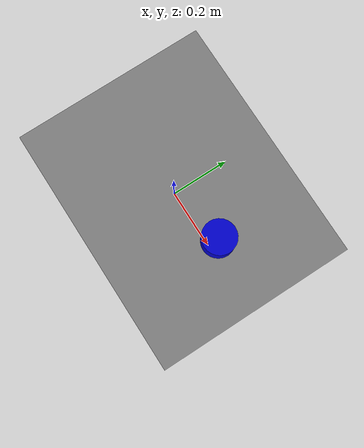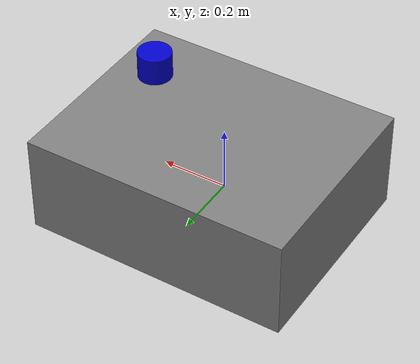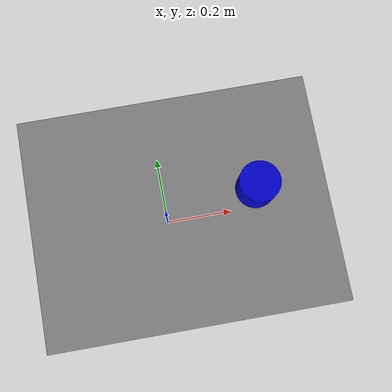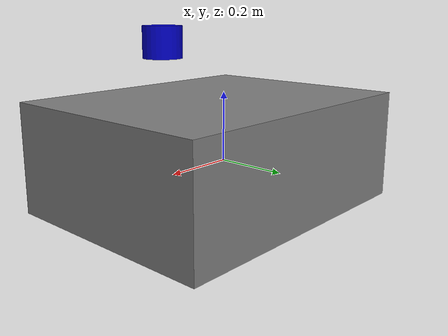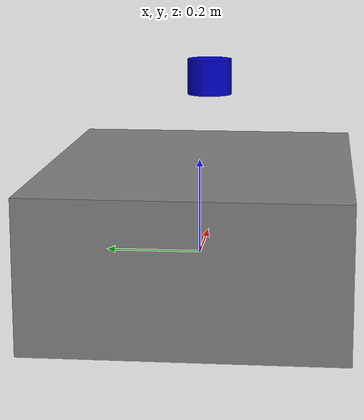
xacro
<?xml version="1.0"?>
<robot name="hunter_se" xmlns:xacro="http://www.ros.org/wiki/xacro">

  <!-- 使用 xacro 内置的 pi 常量，不重复定义 -->

  <!-- ========== 车辆本体尺寸（手册 §1.2 性能参数） ========== -->
  <xacro:property name="length" value="0.82"/>          <!-- 车长 m（820mm） -->
  <xacro:property name="width" value="0.64"/>           <!-- 车宽 m（640mm） -->
  <xacro:property name="height" value="0.31"/>          <!-- 车高 m（310mm） -->
  <xacro:property name="wheelbase" value="0.46"/>       <!-- 轴距 m（460mm，前/后轴中心距） -->
  <xacro:property name="track" value="0.55"/>           <!-- 轮距 m（550mm，左右轮距） -->
  <xacro:property name="max_steer_angle" value="0.384"/> <!-- 最大内轮转向角 22°=0.384rad（CAN 限幅 ±0.4rad） -->
  <xacro:property name="front_overhang" value="0.45"/>  <!-- 车体前缘距 base_link m -->
  <xacro:property name="rear_overhang" value="0.37"/>   <!-- 车体后缘距 base_link m -->
  <xacro:property name="half_width" value="0.32"/>      <!-- 半宽 m -->
  <xacro:property name="ground_clearance" value="0.12"/> <!-- base_link 距地面 m（120mm） -->

  <!-- ========== 传感器安装偏移（附录 D，相对 base_link） ========== -->
  <xacro:property name="lidar_x" value="0.23"/>
  <xacro:property name="lidar_y" value="0.0"/>
  <xacro:property name="lidar_z" value="0.35"/>

  <xacro:property name="camera_x" value="0.40"/>
  <xacro:property name="camera_y" value="0.0"/>
  <xacro:property name="camera_z" value="0.30"/>

  <xacro:property name="imu_x" value="0.10"/>
  <xacro:property name="imu_y" value="0.0"/>
  <xacro:property name="imu_z" value="0.20"/>

  <!-- ========== base_link（后轴中心，X前/Y左/Z上，距地面 120mm） ========== -->
  <link name="base_link">
    <visual>
      <geometry>
        <box size="${length} ${width} ${height}"/>
      </geometry>
      <origin xyz="${(front_overhang - rear_overhang) / 2} 0 ${height / 2 - ground_clearance}" rpy="0 0 0"/>
      <material name="gray">
        <color rgba="0.5 0.5 0.5 1.0"/>
      </material>
    </visual>
    <collision>
      <geometry>
        <box size="${length} ${width} ${height}"/>
      </geometry>
      <origin xyz="${(front_overhang - rear_overhang) / 2} 0 ${height / 2 - ground_clearance}" rpy="0 0 0"/>
    </collision>
    <inertial>
      <origin xyz="${(front_overhang - rear_overhang) / 2} 0 ${height / 2 - ground_clearance}" rpy="0 0 0"/>
      <mass value="42.0"/>   <!-- 整备重量 42kg（手册 §1.2） -->
      <inertia ixx="1.0" ixy="0.0" ixz="0.0" iyy="1.0" iyz="0.0" izz="1.0"/>
    </inertial>
  </link>

  <!-- ========== rslidar（LiDAR 光心，X前/Y左/Z上；与 rslidar_sdk ros_frame_id 一致） ========== -->
  <link name="rslidar">
    <visual>
      <geometry>
        <cylinder radius="0.05" length="0.08"/>
      </geometry>
      <material name="blue">
        <color rgba="0.0 0.0 0.8 1.0"/>
      </material>
    </visual>
  </link>
  <joint name="lidar_joint" type="fixed">
    <parent link="base_link"/>
    <child link="rslidar"/>
    <origin xyz="${lidar_x} ${lidar_y} ${lidar_z}" rpy="0 0 0"/>
  </joint>

  <!-- ========== camera_color_optical_frame（D435 光心，Z前/X右/Y下） ========== -->
  <link name="camera_color_optical_frame"/>
  <joint name="camera_color_joint" type="fixed">
    <parent link="base_link"/>
    <child link="camera_color_optical_frame"/>
    <!-- 轴向转换：base_link(X前/Y左/Z上) → optical(Z前/X右/Y下) -->
    <origin xyz="${camera_x} ${camera_y} ${camera_z}" rpy="0 ${-pi / 2} ${pi / 2}"/>
  </joint>

  <!-- ========== imu（IMU 中心，X前/Y左/Z上） ========== -->
  <link name="imu"/>
  <joint name="imu_joint" type="fixed">
    <parent link="base_link"/>
    <child link="imu"/>
    <origin xyz="${imu_x} ${imu_y} ${imu_z}" rpy="0 0 0"/>
  </joint>
</robot>
